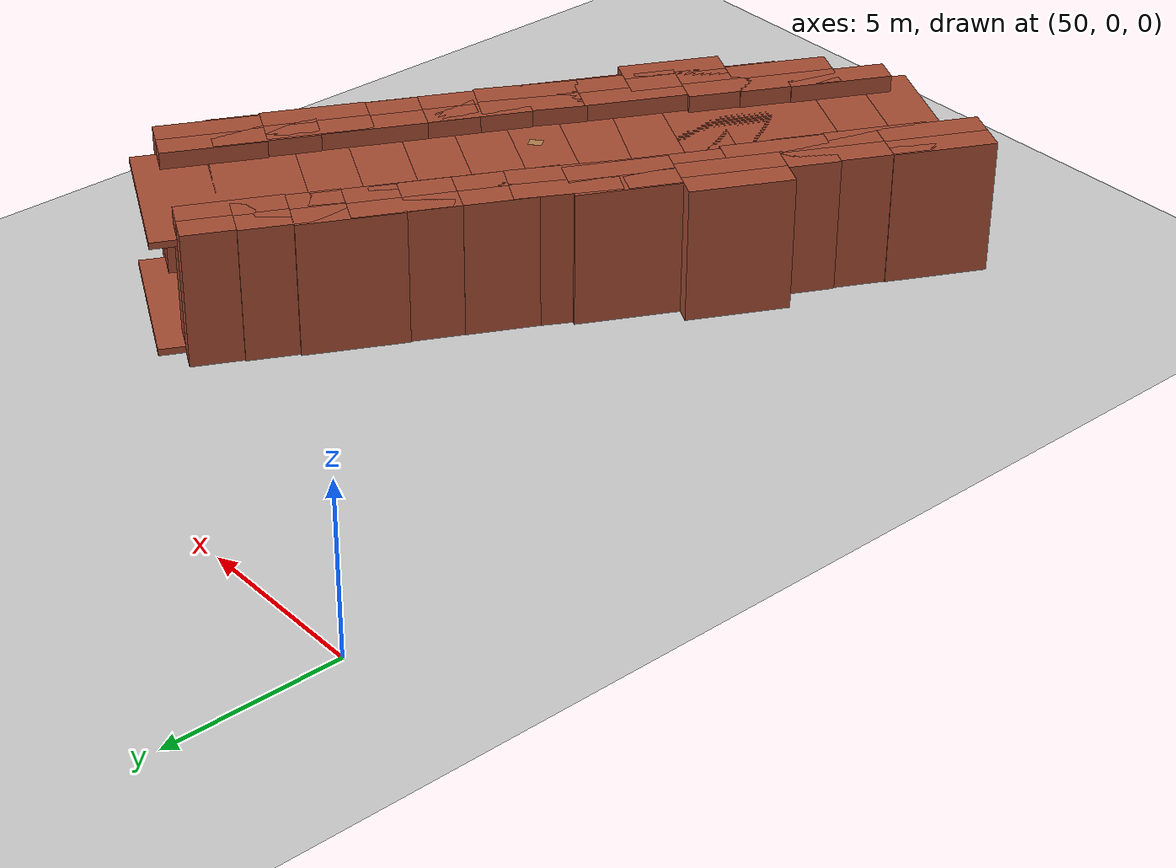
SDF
<sdf version="1.6">
 <world name="procedural_cave_world">
  <include><uri>model://sun</uri></include>
  <include><uri>model://ground_plane</uri></include>
  <model name="procedural_cave">
   <static>true</static>
   <link name="left_wall_52">
    <pose>54.05314576381698 -23.496715161615228 1.5 0 0 1.1</pose>
    <collision name="collision"><geometry><box><size>3.0 0.8 5.0</size></box></geometry></collision>
    <visual name="visual">
     <geometry><box><size>3.0 0.8 5.0</size></box></geometry>
     <material>
      <script><uri>file://media/materials/scripts/gazebo.material</uri><name>Gazebo/Bricks</name></script>
     </material>
    </visual>
   </link>
   <link name="fill_left_52">
    <pose>53.34017987576783 -23.133838264474768 1.5 0 0 1.1</pose>
    <collision name="collision"><geometry><box><size>3.0 0.8 5.0</size></box></geometry></collision>
    <visual name="visual">
     <geometry><box><size>3.0 0.8 5.0</size></box></geometry>
     <material>
      <script><uri>file://media/materials/scripts/gazebo.material</uri><name>Gazebo/Bricks</name></script>
     </material>
    </visual>
   </link>
   <link name="left_wall_53">
    <pose>54.78479903473218 -22.185993362814106 1.5 0 0 1.1</pose>
    <collision name="collision"><geometry><box><size>3.0 0.8 5.0</size></box></geometry></collision>
    <visual name="visual">
     <geometry><box><size>3.0 0.8 5.0</size></box></geometry>
     <material>
      <script><uri>file://media/materials/scripts/gazebo.material</uri><name>Gazebo/Bricks</name></script>
     </material>
    </visual>
   </link>
   <link name="right_wall_53">
    <pose>58.057802061277734 -23.851847511676713 1.5 0 0 1.1</pose>
    <collision name="collision"><geometry><box><size>3.0 0.8 5.0</size></box></geometry></collision>
    <visual name="visual">
     <geometry><box><size>3.0 0.8 5.0</size></box></geometry>
     <material>
      <script><uri>file://media/materials/scripts/gazebo.material</uri><name>Gazebo/Bricks</name></script>
     </material>
    </visual>
   </link>
   <link name="fill_left_53">
    <pose>54.07183314668303 -21.823116465673642 1.5 0 0 1.1</pose>
    <collision name="collision"><geometry><box><size>3.0 0.8 5.0</size></box></geometry></collision>
    <visual name="visual">
     <geometry><box><size>3.0 0.8 5.0</size></box></geometry>
     <material>
      <script><uri>file://media/materials/scripts/gazebo.material</uri><name>Gazebo/Bricks</name></script>
     </material>
    </visual>
   </link>
   <link name="ceiling_53">
    <pose>56.42130054800496 -23.01892043724541 3.3975786100602554 0 0 1.1</pose>
    <collision name="collision"><geometry><box><size>4.5 4.67254936754553 0.2</size></box></geometry></collision>
    <visual name="visual">
     <geometry><box><size>4.5 4.67254936754553 0.2</size></box></geometry>
     <material>
      <script><uri>file://media/materials/scripts/gazebo.material</uri><name>Gazebo/Bricks</name></script>
     </material>
    </visual>
   </link>
   <link name="floor_53">
    <pose>56.42130054800496 -23.01892043724541 0.10028004252685074 0 0 1.1</pose>
    <collision name="collision"><geometry><box><size>4.5 4.67254936754553 0.2</size></box></geometry></collision>
    <visual name="visual">
     <geometry><box><size>4.5 4.67254936754553 0.2</size></box></geometry>
     <material>
      <script><uri>file://media/materials/scripts/gazebo.material</uri><name>Gazebo/Bricks</name></script>
     </material>
    </visual>
   </link>
   <link name="left_wall_54">
    <pose>55.436701486994686 -20.834680940952047 1.5 0 0 1.1</pose>
    <collision name="collision"><geometry><box><size>3.0 0.8 5.0</size></box></geometry></collision>
    <visual name="visual">
     <geometry><box><size>3.0 0.8 5.0</size></box></geometry>
     <material>
      <script><uri>file://media/materials/scripts/gazebo.material</uri><name>Gazebo/Bricks</name></script>
     </material>
    </visual>
   </link>
   <link name="right_wall_54">
    <pose>58.76668797329196 -22.529537853354462 1.5 0 0 1.1</pose>
    <collision name="collision"><geometry><box><size>3.0 0.8 5.0</size></box></geometry></collision>
    <visual name="visual">
     <geometry><box><size>3.0 0.8 5.0</size></box></geometry>
     <material>
      <script><uri>file://media/materials/scripts/gazebo.material</uri><name>Gazebo/Bricks</name></script>
     </material>
    </visual>
   </link>
   <link name="fill_left_54">
    <pose>54.72373559894554 -20.471804043811588 1.5 0 0 1.1</pose>
    <collision name="collision"><geometry><box><size>3.0 0.8 5.0</size></box></geometry></collision>
    <visual name="visual">
     <geometry><box><size>3.0 0.8 5.0</size></box></geometry>
     <material>
      <script><uri>file://media/materials/scripts/gazebo.material</uri><name>Gazebo/Bricks</name></script>
     </material>
    </visual>
   </link>
   <link name="fill_right_54">
    <pose>59.479653861341106 -22.892414750494922 1.5 0 0 1.1</pose>
    <collision name="collision"><geometry><box><size>3.0 0.8 5.0</size></box></geometry></collision>
    <visual name="visual">
     <geometry><box><size>3.0 0.8 5.0</size></box></geometry>
     <material>
      <script><uri>file://media/materials/scripts/gazebo.material</uri><name>Gazebo/Bricks</name></script>
     </material>
    </visual>
   </link>
   <link name="ceiling_54">
    <pose>57.10169473014332 -21.682109397153255 3.398547166036153 0 0 1.1</pose>
    <collision name="collision">
     <geometry><box><size>4.5 4.7364889873303095 0.2</size></box></geometry>
    </collision>
    <visual name="visual">
     <geometry><box><size>4.5 4.7364889873303095 0.2</size></box></geometry>
     <material>
      <script><uri>file://media/materials/scripts/gazebo.material</uri><name>Gazebo/Bricks</name></script>
     </material>
    </visual>
   </link>
   <link name="floor_54">
    <pose>57.10169473014332 -21.682109397153255 0.10016802551611045 0 0 1.1</pose>
    <collision name="collision">
     <geometry><box><size>4.5 4.7364889873303095 0.2</size></box></geometry>
    </collision>
    <visual name="visual">
     <geometry><box><size>4.5 4.7364889873303095 0.2</size></box></geometry>
     <material>
      <script><uri>file://media/materials/scripts/gazebo.material</uri><name>Gazebo/Bricks</name></script>
     </material>
    </visual>
   </link>
   <link name="left_wall_55">
    <pose>56.08383753967703 -19.480942573726868 1.5 0 0 1.1</pose>
    <collision name="collision"><geometry><box><size>3.0 0.8 5.0</size></box></geometry></collision>
    <visual name="visual">
     <geometry><box><size>3.0 0.8 5.0</size></box></geometry>
     <material>
      <script><uri>file://media/materials/scripts/gazebo.material</uri><name>Gazebo/Bricks</name></script>
     </material>
    </visual>
   </link>
   <link name="right_wall_55">
    <pose>59.480340284886346 -21.209654140395333 1.5 0 0 1.1</pose>
    <collision name="collision"><geometry><box><size>3.0 0.8 5.0</size></box></geometry></collision>
    <visual name="visual">
     <geometry><box><size>3.0 0.8 5.0</size></box></geometry>
     <material>
      <script><uri>file://media/materials/scripts/gazebo.material</uri><name>Gazebo/Bricks</name></script>
     </material>
    </visual>
   </link>
   <link name="fill_left_55">
    <pose>55.37087165162788 -19.118065676586408 1.5 0 0 1.1</pose>
    <collision name="collision"><geometry><box><size>3.0 0.8 5.0</size></box></geometry></collision>
    <visual name="visual">
     <geometry><box><size>3.0 0.8 5.0</size></box></geometry>
     <material>
      <script><uri>file://media/materials/scripts/gazebo.material</uri><name>Gazebo/Bricks</name></script>
     </material>
    </visual>
   </link>
   <link name="fill_right_55">
    <pose>60.19330617293549 -21.572531037535793 1.5 0 0 1.1</pose>
    <collision name="collision"><geometry><box><size>3.0 0.8 5.0</size></box></geometry></collision>
    <visual name="visual">
     <geometry><box><size>3.0 0.8 5.0</size></box></geometry>
     <material>
      <script><uri>file://media/materials/scripts/gazebo.material</uri><name>Gazebo/Bricks</name></script>
     </material>
    </visual>
   </link>
   <link name="ceiling_55">
    <pose>57.78208891228169 -20.3452983570611 3.3991282996216916 0 0 1.1</pose>
    <collision name="collision">
     <geometry><box><size>4.5 4.8111251067037575 0.2</size></box></geometry>
    </collision>
    <visual name="visual">
     <geometry><box><size>4.5 4.8111251067037575 0.2</size></box></geometry>
     <material>
      <script><uri>file://media/materials/scripts/gazebo.material</uri><name>Gazebo/Bricks</name></script>
     </material>
    </visual>
   </link>
   <link name="floor_55">
    <pose>57.78208891228169 -20.3452983570611 0.10010081530966627 0 0 1.1</pose>
    <collision name="collision">
     <geometry><box><size>4.5 4.8111251067037575 0.2</size></box></geometry>
    </collision>
    <visual name="visual">
     <geometry><box><size>4.5 4.8111251067037575 0.2</size></box></geometry>
     <material>
      <script><uri>file://media/materials/scripts/gazebo.material</uri><name>Gazebo/Bricks</name></script>
     </material>
    </visual>
   </link>
   <link name="left_wall_56">
    <pose>56.145917548129425 -17.82942934021131 1.5 0 0 1.1</pose>
    <collision name="collision"><geometry><box><size>3.0 0.8 5.0</size></box></geometry></collision>
    <visual name="visual">
     <geometry><box><size>3.0 0.8 5.0</size></box></geometry>
     <material>
      <script><uri>file://media/materials/scripts/gazebo.material</uri><name>Gazebo/Bricks</name></script>
     </material>
    </visual>
   </link>
   <link name="right_wall_56">
    <pose>60.77904864071068 -20.187545293726583 1.5 0 0 1.1</pose>
    <collision name="collision"><geometry><box><size>3.0 0.8 5.0</size></box></geometry></collision>
    <visual name="visual">
     <geometry><box><size>3.0 0.8 5.0</size></box></geometry>
     <material>
      <script><uri>file://media/materials/scripts/gazebo.material</uri><name>Gazebo/Bricks</name></script>
     </material>
    </visual>
   </link>
   <link name="fill_left_56">
    <pose>55.43295166008028 -17.466552443070846 1.5 0 0 1.1</pose>
    <collision name="collision"><geometry><box><size>3.0 0.8 5.0</size></box></geometry></collision>
    <visual name="visual">
     <geometry><box><size>3.0 0.8 5.0</size></box></geometry>
     <material>
      <script><uri>file://media/materials/scripts/gazebo.material</uri><name>Gazebo/Bricks</name></script>
     </material>
    </visual>
   </link>
   <link name="fill_right_56">
    <pose>61.492014528759825 -20.550422190867046 1.5 0 0 1.1</pose>
    <collision name="collision"><geometry><box><size>3.0 0.8 5.0</size></box></geometry></collision>
    <visual name="visual">
     <geometry><box><size>3.0 0.8 5.0</size></box></geometry>
     <material>
      <script><uri>file://media/materials/scripts/gazebo.material</uri><name>Gazebo/Bricks</name></script>
     </material>
    </visual>
   </link>
   <link name="ceiling_56">
    <pose>58.46248309442005 -19.008487316968946 3.3991282996216916 0 0 1.1</pose>
    <collision name="collision"><geometry><box><size>4.5 6.198712780224191 0.2</size></box></geometry></collision>
    <visual name="visual">
     <geometry><box><size>4.5 6.198712780224191 0.2</size></box></geometry>
     <material>
      <script><uri>file://media/materials/scripts/gazebo.material</uri><name>Gazebo/Bricks</name></script>
     </material>
    </visual>
   </link>
   <link name="floor_56">
    <pose>58.46248309442005 -19.008487316968946 0.10006048918579977 0 0 1.1</pose>
    <collision name="collision"><geometry><box><size>4.5 6.198712780224191 0.2</size></box></geometry></collision>
    <visual name="visual">
     <geometry><box><size>4.5 6.198712780224191 0.2</size></box></geometry>
     <material>
      <script><uri>file://media/materials/scripts/gazebo.material</uri><name>Gazebo/Bricks</name></script>
     </material>
    </visual>
   </link>
   <link name="left_wall_57">
    <pose>57.315226292309845 -16.741460218385484 1.5 0 0 1.1</pose>
    <collision name="collision"><geometry><box><size>3.0 0.8 5.0</size></box></geometry></collision>
    <visual name="visual">
     <geometry><box><size>3.0 0.8 5.0</size></box></geometry>
     <material>
      <script><uri>file://media/materials/scripts/gazebo.material</uri><name>Gazebo/Bricks</name></script>
     </material>
    </visual>
   </link>
   <link name="right_wall_57">
    <pose>60.97052826080699 -18.6018923353681 1.5 0 0 1.1</pose>
    <collision name="collision"><geometry><box><size>3.0 0.8 5.0</size></box></geometry></collision>
    <visual name="visual">
     <geometry><box><size>3.0 0.8 5.0</size></box></geometry>
     <material>
      <script><uri>file://media/materials/scripts/gazebo.material</uri><name>Gazebo/Bricks</name></script>
     </material>
    </visual>
   </link>
   <link name="fill_left_57">
    <pose>56.6022604042607 -16.378583321245024 1.5 0 0 1.1</pose>
    <collision name="collision"><geometry><box><size>3.0 0.8 5.0</size></box></geometry></collision>
    <visual name="visual">
     <geometry><box><size>3.0 0.8 5.0</size></box></geometry>
     <material>
      <script><uri>file://media/materials/scripts/gazebo.material</uri><name>Gazebo/Bricks</name></script>
     </material>
    </visual>
   </link>
   <link name="fill_right_57">
    <pose>61.683494148856134 -18.96476923250856 1.5 0 0 1.1</pose>
    <collision name="collision"><geometry><box><size>3.0 0.8 5.0</size></box></geometry></collision>
    <visual name="visual">
     <geometry><box><size>3.0 0.8 5.0</size></box></geometry>
     <material>
      <script><uri>file://media/materials/scripts/gazebo.material</uri><name>Gazebo/Bricks</name></script>
     </material>
    </visual>
   </link>
   <link name="ceiling_57">
    <pose>59.142877276558416 -17.67167627687679 3.3991282996216916 0 0 1.1</pose>
    <collision name="collision"><geometry><box><size>4.5 5.101516810010594 0.2</size></box></geometry></collision>
    <visual name="visual">
     <geometry><box><size>4.5 5.101516810010594 0.2</size></box></geometry>
     <material>
      <script><uri>file://media/materials/scripts/gazebo.material</uri><name>Gazebo/Bricks</name></script>
     </material>
    </visual>
   </link>
   <link name="floor_57">
    <pose>59.142877276558416 -17.67167627687679 0.10003629351147986 0 0 1.1</pose>
    <collision name="collision"><geometry><box><size>4.5 5.101516810010594 0.2</size></box></geometry></collision>
    <visual name="visual">
     <geometry><box><size>4.5 5.101516810010594 0.2</size></box></geometry>
     <material>
      <script><uri>file://media/materials/scripts/gazebo.material</uri><name>Gazebo/Bricks</name></script>
     </material>
    </visual>
   </link>
   <link name="left_wall_58">
    <pose>57.94950404976077 -15.381177388999765 1.5 0 0 1.1</pose>
    <collision name="collision"><geometry><box><size>3.0 0.8 5.0</size></box></geometry></collision>
    <visual name="visual">
     <geometry><box><size>3.0 0.8 5.0</size></box></geometry>
     <material>
      <script><uri>file://media/materials/scripts/gazebo.material</uri><name>Gazebo/Bricks</name></script>
     </material>
    </visual>
   </link>
   <link name="right_wall_58">
    <pose>61.69703886763279 -17.28855308456951 1.5 0 0 1.1</pose>
    <collision name="collision"><geometry><box><size>3.0 0.8 5.0</size></box></geometry></collision>
    <visual name="visual">
     <geometry><box><size>3.0 0.8 5.0</size></box></geometry>
     <material>
      <script><uri>file://media/materials/scripts/gazebo.material</uri><name>Gazebo/Bricks</name></script>
     </material>
    </visual>
   </link>
   <link name="fill_left_58">
    <pose>57.23653816171162 -15.018300491859302 1.5 0 0 1.1</pose>
    <collision name="collision"><geometry><box><size>3.0 0.8 5.0</size></box></geometry></collision>
    <visual name="visual">
     <geometry><box><size>3.0 0.8 5.0</size></box></geometry>
     <material>
      <script><uri>file://media/materials/scripts/gazebo.material</uri><name>Gazebo/Bricks</name></script>
     </material>
    </visual>
   </link>
   <link name="fill_right_58">
    <pose>62.41000475568194 -17.65142998170997 1.5 0 0 1.1</pose>
    <collision name="collision"><geometry><box><size>3.0 0.8 5.0</size></box></geometry></collision>
    <visual name="visual">
     <geometry><box><size>3.0 0.8 5.0</size></box></geometry>
     <material>
      <script><uri>file://media/materials/scripts/gazebo.material</uri><name>Gazebo/Bricks</name></script>
     </material>
    </visual>
   </link>
   <link name="ceiling_58">
    <pose>59.82327145869678 -16.334865236784637 3.399476979773015 0 0 1.1</pose>
    <collision name="collision"><geometry><box><size>4.5 5.205008829385887 0.2</size></box></geometry></collision>
    <visual name="visual">
     <geometry><box><size>4.5 5.205008829385887 0.2</size></box></geometry>
     <material>
      <script><uri>file://media/materials/scripts/gazebo.material</uri><name>Gazebo/Bricks</name></script>
     </material>
    </visual>
   </link>
   <link name="floor_58">
    <pose>59.82327145869678 -16.334865236784637 0.10002177610688792 0 0 1.1</pose>
    <collision name="collision"><geometry><box><size>4.5 5.205008829385887 0.2</size></box></geometry></collision>
    <visual name="visual">
     <geometry><box><size>4.5 5.205008829385887 0.2</size></box></geometry>
     <material>
      <script><uri>file://media/materials/scripts/gazebo.material</uri><name>Gazebo/Bricks</name></script>
     </material>
    </visual>
   </link>
   <link name="left_wall_59">
    <pose>58.77586383853381 -14.029354279779069 1.5 0 0 1.0604034389329031</pose>
    <collision name="collision"><geometry><box><size>3.0 0.8 5.0</size></box></geometry></collision>
    <visual name="visual">
     <geometry><box><size>3.0 0.8 5.0</size></box></geometry>
     <material>
      <script><uri>file://media/materials/scripts/gazebo.material</uri><name>Gazebo/Bricks</name></script>
     </material>
    </visual>
   </link>
   <link name="right_wall_59">
    <pose>62.33623937861984 -16.022718269658956 1.5 0 0 1.0604034389329031</pose>
    <collision name="collision"><geometry><box><size>3.0 0.8 5.0</size></box></geometry></collision>
    <visual name="visual">
     <geometry><box><size>3.0 0.8 5.0</size></box></geometry>
     <material>
      <script><uri>file://media/materials/scripts/gazebo.material</uri><name>Gazebo/Bricks</name></script>
     </material>
    </visual>
   </link>
   <link name="fill_left_59">
    <pose>58.07782172543214 -13.638538199843046 1.5 0 0 1.0604034389329031</pose>
    <collision name="collision"><geometry><box><size>3.0 0.8 5.0</size></box></geometry></collision>
    <visual name="visual">
     <geometry><box><size>3.0 0.8 5.0</size></box></geometry>
     <material>
      <script><uri>file://media/materials/scripts/gazebo.material</uri><name>Gazebo/Bricks</name></script>
     </material>
    </visual>
   </link>
   <link name="fill_right_59">
    <pose>63.03428149172151 -16.41353434959498 1.5 0 0 1.0604034389329031</pose>
    <collision name="collision"><geometry><box><size>3.0 0.8 5.0</size></box></geometry></collision>
    <visual name="visual">
     <geometry><box><size>3.0 0.8 5.0</size></box></geometry>
     <material>
      <script><uri>file://media/materials/scripts/gazebo.material</uri><name>Gazebo/Bricks</name></script>
     </material>
    </visual>
   </link>
   <link name="ceiling_59">
    <pose>60.55605160857682 -15.026036274719011 3.3996861878638094 0 0 1.0604034389329031</pose>
    <collision name="collision"><geometry><box><size>4.5 5.080413457309536 0.2</size></box></geometry></collision>
    <visual name="visual">
     <geometry><box><size>4.5 5.080413457309536 0.2</size></box></geometry>
     <material>
      <script><uri>file://media/materials/scripts/gazebo.material</uri><name>Gazebo/Bricks</name></script>
     </material>
    </visual>
   </link>
   <link name="floor_59">
    <pose>60.55605160857682 -15.026036274719011 0.10001306566413275 0 0 1.0604034389329031</pose>
    <collision name="collision"><geometry><box><size>4.5 5.080413457309536 0.2</size></box></geometry></collision>
    <visual name="visual">
     <geometry><box><size>4.5 5.080413457309536 0.2</size></box></geometry>
     <material>
      <script><uri>file://media/materials/scripts/gazebo.material</uri><name>Gazebo/Bricks</name></script>
     </material>
    </visual>
   </link>
   <link name="left_wall_60">
    <pose>59.447888549153156 -12.778906644277424 1.5 0 0 1.1</pose>
    <collision name="collision"><geometry><box><size>3.0 0.8 5.0</size></box></geometry></collision>
    <visual name="visual">
     <geometry><box><size>3.0 0.8 5.0</size></box></geometry>
     <material>
      <script><uri>file://media/materials/scripts/gazebo.material</uri><name>Gazebo/Bricks</name></script>
     </material>
    </visual>
   </link>
   <link name="right_wall_60">
    <pose>63.02500303227722 -14.599543824976294 1.5 0 0 1.1</pose>
    <collision name="collision"><geometry><box><size>3.0 0.8 5.0</size></box></geometry></collision>
    <visual name="visual">
     <geometry><box><size>3.0 0.8 5.0</size></box></geometry>
     <material>
      <script><uri>file://media/materials/scripts/gazebo.material</uri><name>Gazebo/Bricks</name></script>
     </material>
    </visual>
   </link>
   <link name="fill_left_60">
    <pose>58.73492266110401 -12.416029747136962 1.5 0 0 1.1</pose>
    <collision name="collision"><geometry><box><size>3.0 0.8 5.0</size></box></geometry></collision>
    <visual name="visual">
     <geometry><box><size>3.0 0.8 5.0</size></box></geometry>
     <material>
      <script><uri>file://media/materials/scripts/gazebo.material</uri><name>Gazebo/Bricks</name></script>
     </material>
    </visual>
   </link>
   <link name="fill_right_60">
    <pose>63.73796892032637 -14.962420722116756 1.5 0 0 1.1</pose>
    <collision name="collision"><geometry><box><size>3.0 0.8 5.0</size></box></geometry></collision>
    <visual name="visual">
     <geometry><box><size>3.0 0.8 5.0</size></box></geometry>
     <material>
      <script><uri>file://media/materials/scripts/gazebo.material</uri><name>Gazebo/Bricks</name></script>
     </material>
    </visual>
   </link>
   <link name="ceiling_60">
    <pose>61.23644579071519 -13.689225234626859 3.3998117127182854 0 0 1.1</pose>
    <collision name="collision"><geometry><box><size>4.5 5.013784718830728 0.2</size></box></geometry></collision>
    <visual name="visual">
     <geometry><box><size>4.5 5.013784718830728 0.2</size></box></geometry>
     <material>
      <script><uri>file://media/materials/scripts/gazebo.material</uri><name>Gazebo/Bricks</name></script>
     </material>
    </visual>
   </link>
   <link name="floor_60">
    <pose>61.23644579071519 -13.689225234626859 0.10000783939847965 0 0 1.1</pose>
    <collision name="collision"><geometry><box><size>4.5 5.013784718830728 0.2</size></box></geometry></collision>
    <visual name="visual">
     <geometry><box><size>4.5 5.013784718830728 0.2</size></box></geometry>
     <material>
      <script><uri>file://media/materials/scripts/gazebo.material</uri><name>Gazebo/Bricks</name></script>
     </material>
    </visual>
   </link>
   <link name="obs_stone_60">
    <pose>61.23644579071519 -15.220914358436197 2.900454993988338 0 0 0.6770627912723663</pose>
    <collision name="collision">
     <geometry><box><size>0.3692639846833339 0.2940299884638253 1.1987134374598947</size></box></geometry>
    </collision>
    <visual name="visual">
     <geometry><box><size>0.39313987396649247 0.30034033094735185 1.1987134374598947</size></box></geometry>
     <material>
      <script><uri>file://media/materials/scripts/gazebo.material</uri><name>Gazebo/Wood</name></script>
     </material>
    </visual>
   </link>
   <link name="obs_slab_60">
    <pose>62.1307244114962 -14.144384529801576 2.7896143915840015 0 0 1.1</pose>
    <collision name="collision">
     <geometry><box><size>0.3 1.2316139662629788 0.11086240414656606</size></box></geometry>
    </collision>
    <visual name="visual">
     <geometry><box><size>0.3 1.2316139662629788 0.11086240414656606</size></box></geometry>
     <material>
      <script><uri>file://media/materials/scripts/gazebo.material</uri><name>Gazebo/Wood</name></script>
     </material>
    </visual>
   </link>
   <link name="left_wall_61">
    <pose>60.13424676746141 -11.445131108374238 1.5 0 0 1.1</pose>
    <collision name="collision"><geometry><box><size>3.0 0.8 5.0</size></box></geometry></collision>
    <visual name="visual">
     <geometry><box><size>3.0 0.8 5.0</size></box></geometry>
     <material>
      <script><uri>file://media/materials/scripts/gazebo.material</uri><name>Gazebo/Bricks</name></script>
     </material>
    </visual>
   </link>
   <link name="right_wall_61">
    <pose>63.69943317824569 -13.259697280695175 1.5 0 0 1.1</pose>
    <collision name="collision"><geometry><box><size>3.0 0.8 5.0</size></box></geometry></collision>
    <visual name="visual">
     <geometry><box><size>3.0 0.8 5.0</size></box></geometry>
     <material>
      <script><uri>file://media/materials/scripts/gazebo.material</uri><name>Gazebo/Bricks</name></script>
     </material>
    </visual>
   </link>
   <link name="fill_left_61">
    <pose>59.421280879412265 -11.082254211233776 1.5 0 0 1.1</pose>
    <collision name="collision"><geometry><box><size>3.0 0.8 5.0</size></box></geometry></collision>
    <visual name="visual">
     <geometry><box><size>3.0 0.8 5.0</size></box></geometry>
     <material>
      <script><uri>file://media/materials/scripts/gazebo.material</uri><name>Gazebo/Bricks</name></script>
     </material>
    </visual>
   </link>
   <link name="fill_right_61">
    <pose>64.41239906629484 -13.622574177835636 1.5 0 0 1.1</pose>
    <collision name="collision"><geometry><box><size>3.0 0.8 5.0</size></box></geometry></collision>
    <visual name="visual">
     <geometry><box><size>3.0 0.8 5.0</size></box></geometry>
     <material>
      <script><uri>file://media/materials/scripts/gazebo.material</uri><name>Gazebo/Bricks</name></script>
     </material>
    </visual>
   </link>
   <link name="ceiling_61">
    <pose>61.91683997285355 -12.352414194534706 3.3998870276309714 0 0 1.1</pose>
    <collision name="collision"><geometry><box><size>4.5 5.000400547116799 0.2</size></box></geometry></collision>
    <visual name="visual">
     <geometry><box><size>4.5 5.000400547116799 0.2</size></box></geometry>
     <material>
      <script><uri>file://media/materials/scripts/gazebo.material</uri><name>Gazebo/Bricks</name></script>
     </material>
    </visual>
   </link>
   <link name="floor_61">
    <pose>61.91683997285355 -12.352414194534706 0.1000047036390878 0 0 1.1</pose>
    <collision name="collision"><geometry><box><size>4.5 5.000400547116799 0.2</size></box></geometry></collision>
    <visual name="visual">
     <geometry><box><size>4.5 5.000400547116799 0.2</size></box></geometry>
     <material>
      <script><uri>file://media/materials/scripts/gazebo.material</uri><name>Gazebo/Bricks</name></script>
     </material>
    </visual>
   </link>
   <link name="left_wall_62">
    <pose>60.82431865673379 -10.11324571254514 1.5 0 0 1.1</pose>
    <collision name="collision"><geometry><box><size>3.0 0.8 5.0</size></box></geometry></collision>
    <visual name="visual">
     <geometry><box><size>3.0 0.8 5.0</size></box></geometry>
     <material>
      <script><uri>file://media/materials/scripts/gazebo.material</uri><name>Gazebo/Bricks</name></script>
     </material>
    </visual>
   </link>
   <link name="right_wall_62">
    <pose>64.37014965325005 -11.917960596339967 1.5 0 0 1.1</pose>
    <collision name="collision"><geometry><box><size>3.0 0.8 5.0</size></box></geometry></collision>
    <visual name="visual">
     <geometry><box><size>3.0 0.8 5.0</size></box></geometry>
     <material>
      <script><uri>file://media/materials/scripts/gazebo.material</uri><name>Gazebo/Bricks</name></script>
     </material>
    </visual>
   </link>
   <link name="fill_left_62">
    <pose>60.11135276868464 -9.750368815404679 1.5 0 0 1.1</pose>
    <collision name="collision"><geometry><box><size>3.0 0.8 5.0</size></box></geometry></collision>
    <visual name="visual">
     <geometry><box><size>3.0 0.8 5.0</size></box></geometry>
     <material>
      <script><uri>file://media/materials/scripts/gazebo.material</uri><name>Gazebo/Bricks</name></script>
     </material>
    </visual>
   </link>
   <link name="fill_right_62">
    <pose>65.0831155412992 -12.280837493480428 1.5 0 0 1.1</pose>
    <collision name="collision"><geometry><box><size>3.0 0.8 5.0</size></box></geometry></collision>
    <visual name="visual">
     <geometry><box><size>3.0 0.8 5.0</size></box></geometry>
     <material>
      <script><uri>file://media/materials/scripts/gazebo.material</uri><name>Gazebo/Bricks</name></script>
     </material>
    </visual>
   </link>
   <link name="ceiling_62">
    <pose>62.59723415499192 -11.015603154442553 3.399932216578583 0 0 1.1</pose>
    <collision name="collision">
     <geometry><box><size>4.5 4.9786823531976125 0.2</size></box></geometry>
    </collision>
    <visual name="visual">
     <geometry><box><size>4.5 4.9786823531976125 0.2</size></box></geometry>
     <material>
      <script><uri>file://media/materials/scripts/gazebo.material</uri><name>Gazebo/Bricks</name></script>
     </material>
    </visual>
   </link>
   <link name="floor_62">
    <pose>62.59723415499192 -11.015603154442553 0.10000282218345267 0 0 1.1</pose>
    <collision name="collision">
     <geometry><box><size>4.5 4.9786823531976125 0.2</size></box></geometry>
    </collision>
    <visual name="visual">
     <geometry><box><size>4.5 4.9786823531976125 0.2</size></box></geometry>
     <material>
      <script><uri>file://media/materials/scripts/gazebo.material</uri><name>Gazebo/Bricks</name></script>
     </material>
    </visual>
   </link>
   <link name="left_wall_63">
    <pose>61.47000826680606 -8.755310647780634 1.5 0 0 1.0984815171835562</pose>
    <collision name="collision"><geometry><box><size>3.0 0.8 5.0</size></box></geometry></collision>
    <visual name="visual">
     <geometry><box><size>3.0 0.8 5.0</size></box></geometry>
     <material>
      <script><uri>file://media/materials/scripts/gazebo.material</uri><name>Gazebo/Bricks</name></script>
     </material>
    </visual>
   </link>
   <link name="right_wall_63">
    <pose>65.08930668623489 -10.60434299627907 1.5 0 0 1.0984815171835562</pose>
    <collision name="collision"><geometry><box><size>3.0 0.8 5.0</size></box></geometry></collision>
    <visual name="visual">
     <geometry><box><size>3.0 0.8 5.0</size></box></geometry>
     <material>
      <script><uri>file://media/materials/scripts/gazebo.material</uri><name>Gazebo/Bricks</name></script>
     </material>
    </visual>
   </link>
   <link name="fill_left_63">
    <pose>60.757594222852624 -8.3913515429654 1.5 0 0 1.0984815171835562</pose>
    <collision name="collision"><geometry><box><size>3.0 0.8 5.0</size></box></geometry></collision>
    <visual name="visual">
     <geometry><box><size>3.0 0.8 5.0</size></box></geometry>
     <material>
      <script><uri>file://media/materials/scripts/gazebo.material</uri><name>Gazebo/Bricks</name></script>
     </material>
    </visual>
   </link>
   <link name="fill_right_63">
    <pose>65.80172073018834 -10.968302101094304 1.5 0 0 1.0984815171835562</pose>
    <collision name="collision"><geometry><box><size>3.0 0.8 5.0</size></box></geometry></collision>
    <visual name="visual">
     <geometry><box><size>3.0 0.8 5.0</size></box></geometry>
     <material>
      <script><uri>file://media/materials/scripts/gazebo.material</uri><name>Gazebo/Bricks</name></script>
     </material>
    </visual>
   </link>
   <link name="ceiling_63">
    <pose>63.27965747652048 -9.679826822029852 3.39995932994715 0 0 1.0984815171835562</pose>
    <collision name="collision"><geometry><box><size>4.5 5.064263976991854 0.2</size></box></geometry></collision>
    <visual name="visual">
     <geometry><box><size>4.5 5.064263976991854 0.2</size></box></geometry>
     <material>
      <script><uri>file://media/materials/scripts/gazebo.material</uri><name>Gazebo/Bricks</name></script>
     </material>
    </visual>
   </link>
   <link name="floor_63">
    <pose>63.27965747652048 -9.679826822029852 0.10000169331007161 0 0 1.0984815171835562</pose>
    <collision name="collision"><geometry><box><size>4.5 5.064263976991854 0.2</size></box></geometry></collision>
    <visual name="visual">
     <geometry><box><size>4.5 5.064263976991854 0.2</size></box></geometry>
     <material>
      <script><uri>file://media/materials/scripts/gazebo.material</uri><name>Gazebo/Bricks</name></script>
     </material>
    </visual>
   </link>
   <link name="left_wall_64">
    <pose>62.213603749169174 -7.45412949854602 1.5 0 0 1.1</pose>
    <collision name="collision"><geometry><box><size>3.0 0.8 5.0</size></box></geometry></collision>
    <visual name="visual">
     <geometry><box><size>3.0 0.8 5.0</size></box></geometry>
     <material>
      <script><uri>file://media/materials/scripts/gazebo.material</uri><name>Gazebo/Bricks</name></script>
     </material>
    </visual>
   </link>
   <link name="right_wall_64">
    <pose>65.7064995681485 -9.231902065329379 1.5 0 0 1.1</pose>
    <collision name="collision"><geometry><box><size>3.0 0.8 5.0</size></box></geometry></collision>
    <visual name="visual">
     <geometry><box><size>3.0 0.8 5.0</size></box></geometry>
     <material>
      <script><uri>file://media/materials/scripts/gazebo.material</uri><name>Gazebo/Bricks</name></script>
     </material>
    </visual>
   </link>
   <link name="fill_left_64">
    <pose>61.500637861120026 -7.091252601405558 1.5 0 0 1.1</pose>
    <collision name="collision"><geometry><box><size>3.0 0.8 5.0</size></box></geometry></collision>
    <visual name="visual">
     <geometry><box><size>3.0 0.8 5.0</size></box></geometry>
     <material>
      <script><uri>file://media/materials/scripts/gazebo.material</uri><name>Gazebo/Bricks</name></script>
     </material>
    </visual>
   </link>
   <link name="fill_right_64">
    <pose>66.41946545619766 -9.594778962469842 1.5 0 0 1.1</pose>
    <collision name="collision"><geometry><box><size>3.0 0.8 5.0</size></box></geometry></collision>
    <visual name="visual">
     <geometry><box><size>3.0 0.8 5.0</size></box></geometry>
     <material>
      <script><uri>file://media/materials/scripts/gazebo.material</uri><name>Gazebo/Bricks</name></script>
     </material>
    </visual>
   </link>
   <link name="ceiling_64">
    <pose>63.96005165865884 -8.3430157819377 3.39997559796829 0 0 1.1</pose>
    <collision name="collision"><geometry><box><size>4.5 4.91928520287192 0.2</size></box></geometry></collision>
    <visual name="visual">
     <geometry><box><size>4.5 4.91928520287192 0.2</size></box></geometry>
     <material>
      <script><uri>file://media/materials/scripts/gazebo.material</uri><name>Gazebo/Bricks</name></script>
     </material>
    </visual>
   </link>
   <link name="floor_64">
    <pose>63.96005165865884 -8.3430157819377 0.10000101598604297 0 0 1.1</pose>
    <collision name="collision"><geometry><box><size>4.5 4.91928520287192 0.2</size></box></geometry></collision>
    <visual name="visual">
     <geometry><box><size>4.5 4.91928520287192 0.2</size></box></geometry>
     <material>
      <script><uri>file://media/materials/scripts/gazebo.material</uri><name>Gazebo/Bricks</name></script>
     </material>
    </visual>
   </link>
   <link name="left_wall_65">
    <pose>62.93605835948358 -6.1387258748881655 1.5 0 0 1.1</pose>
    <collision name="collision"><geometry><box><size>3.0 0.8 5.0</size></box></geometry></collision>
    <visual name="visual">
     <geometry><box><size>3.0 0.8 5.0</size></box></geometry>
     <material>
      <script><uri>file://media/materials/scripts/gazebo.material</uri><name>Gazebo/Bricks</name></script>
     </material>
    </visual>
   </link>
   <link name="right_wall_65">
    <pose>66.34483332211084 -7.873683608802929 1.5 0 0 1.1</pose>
    <collision name="collision"><geometry><box><size>3.0 0.8 5.0</size></box></geometry></collision>
    <visual name="visual">
     <geometry><box><size>3.0 0.8 5.0</size></box></geometry>
     <material>
      <script><uri>file://media/materials/scripts/gazebo.material</uri><name>Gazebo/Bricks</name></script>
     </material>
    </visual>
   </link>
   <link name="fill_left_65">
    <pose>62.22309247143443 -5.775848977747703 1.5 0 0 1.1</pose>
    <collision name="collision"><geometry><box><size>3.0 0.8 5.0</size></box></geometry></collision>
    <visual name="visual">
     <geometry><box><size>3.0 0.8 5.0</size></box></geometry>
     <material>
      <script><uri>file://media/materials/scripts/gazebo.material</uri><name>Gazebo/Bricks</name></script>
     </material>
    </visual>
   </link>
   <link name="fill_right_65">
    <pose>67.05779921016 -8.236560505943391 1.5 0 0 1.1</pose>
    <collision name="collision"><geometry><box><size>3.0 0.8 5.0</size></box></geometry></collision>
    <visual name="visual">
     <geometry><box><size>3.0 0.8 5.0</size></box></geometry>
     <material>
      <script><uri>file://media/materials/scripts/gazebo.material</uri><name>Gazebo/Bricks</name></script>
     </material>
    </visual>
   </link>
   <link name="ceiling_65">
    <pose>64.64044584079721 -7.006204741845547 3.3999853587809743 0 0 1.1</pose>
    <collision name="collision"><geometry><box><size>4.5 4.824895434427612 0.2</size></box></geometry></collision>
    <visual name="visual">
     <geometry><box><size>4.5 4.824895434427612 0.2</size></box></geometry>
     <material>
      <script><uri>file://media/materials/scripts/gazebo.material</uri><name>Gazebo/Bricks</name></script>
     </material>
    </visual>
   </link>
   <link name="floor_65">
    <pose>64.64044584079721 -7.006204741845547 0.10000060959162578 0 0 1.1</pose>
    <collision name="collision"><geometry><box><size>4.5 4.824895434427612 0.2</size></box></geometry></collision>
    <visual name="visual">
     <geometry><box><size>4.5 4.824895434427612 0.2</size></box></geometry>
     <material>
      <script><uri>file://media/materials/scripts/gazebo.material</uri><name>Gazebo/Bricks</name></script>
     </material>
    </visual>
   </link>
   <link name="end_wall">
    <pose>64.84044584079722 -7.006204741845547 1.7499929841863 0 0 1.1</pose>
    <collision name="collision">
     <geometry><box><size>0.2 4.224895434427612 3.4999847491893488</size></box></geometry>
    </collision>
    <visual name="visual">
     <geometry><box><size>0.2 4.224895434427612 3.4999847491893488</size></box></geometry>
     <material>
      <script><uri>file://media/materials/scripts/gazebo.material</uri><name>Gazebo/Bricks</name></script>
     </material>
    </visual>
   </link>
  </model>
 </world>
</sdf>
